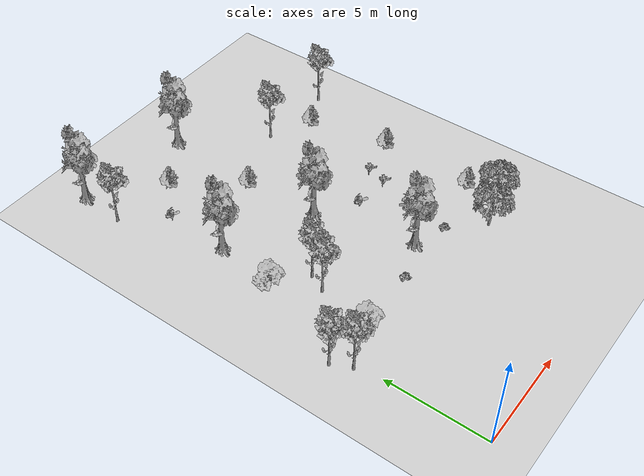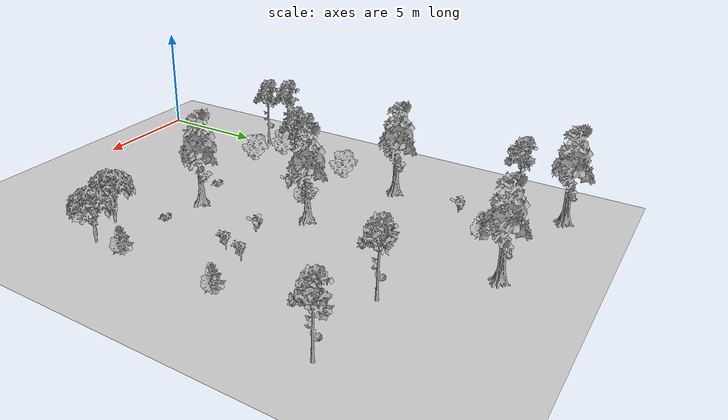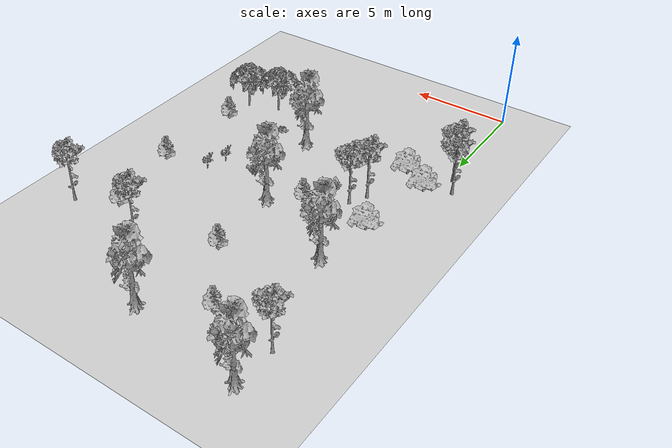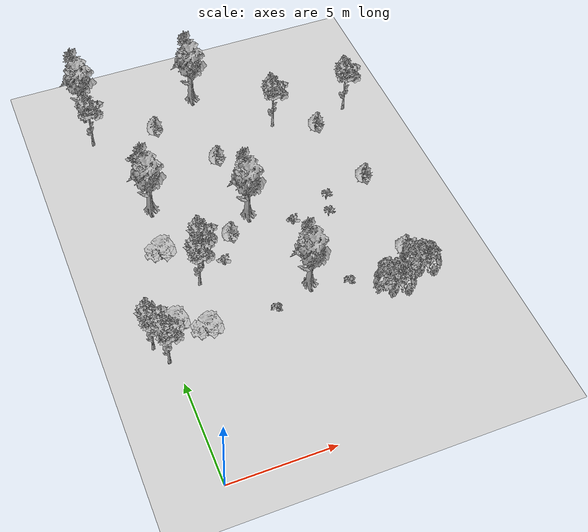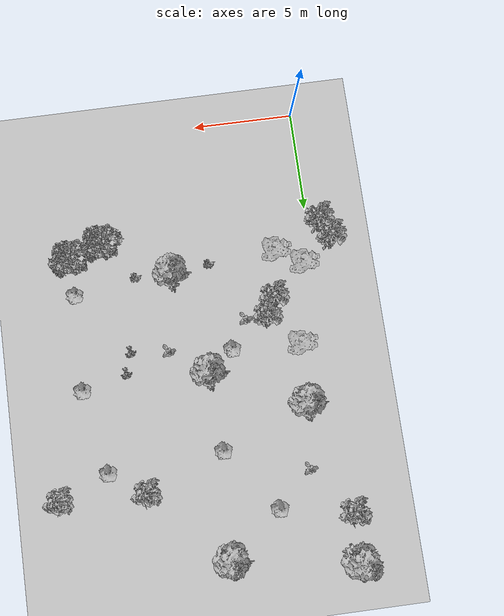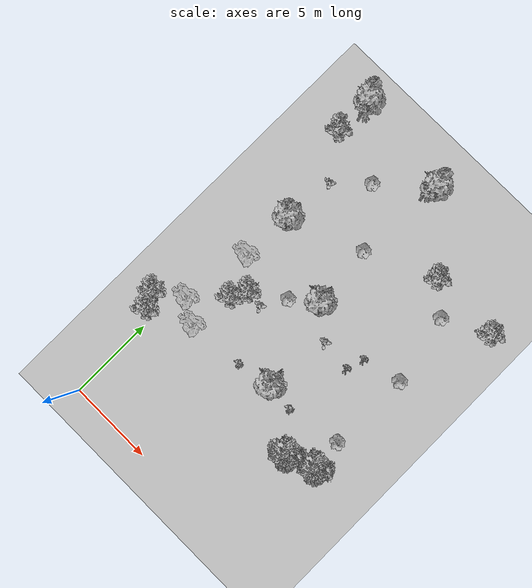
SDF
<sdf version="1.7">
 <world name="default">
  <model name="ground_plane">
   <static>1</static>
   <link name="link">
    <collision name="collision">
     <geometry><plane><normal>0 0 1</normal><size>100 100</size></plane></geometry>
     <surface>
      <contact><collide_bitmask>65535</collide_bitmask></contact>
      <friction><ode><mu>100</mu><mu2>50</mu2></ode></friction>
     </surface>
    </collision>
    <visual name="visual">
     <cast_shadows>0</cast_shadows>
     <geometry><plane><normal>0 0 1</normal><size>100 100</size></plane></geometry>
     <material>
      <script><uri>file://media/materials/scripts/gazebo.material</uri><name>Gazebo/Grey</name></script>
     </material>
    </visual>
   </link>
  </model>
  <model name="Tree 4_clone_5">
   <static>1</static>
   <pose>7.09997 7.95608 8e-06 1.57079 -0 0</pose>
   <link name="link">
    <collision name="collision">
     <geometry><mesh><scale>1 1 1</scale><uri>model://tree_4/meshes/tree_4.obj</uri></mesh></geometry>
    </collision>
    <visual name="visual">
     <geometry><mesh><scale>1 1 1</scale><uri>model://tree_4/meshes/tree_4.obj</uri></mesh></geometry>
    </visual>
   </link>
  </model>
  <model name="Tree 3_clone_0">
   <static>1</static>
   <pose>0.506339 7.77262 0 1.57079 -0 0</pose>
   <link name="link">
    <collision name="collision">
     <geometry><mesh><scale>1 1 1</scale><uri>model://tree_3/meshes/tree_3.obj</uri></mesh></geometry>
    </collision>
    <visual name="visual">
     <geometry><mesh><scale>1 1 1</scale><uri>model://tree_3/meshes/tree_3.obj</uri></mesh></geometry>
    </visual>
   </link>
  </model>
  <model name="Tree 3_clone_1">
   <static>1</static>
   <pose>1.81337 6.98511 0 1.57079 -0 0</pose>
   <link name="link">
    <collision name="collision">
     <geometry><mesh><scale>1 1 1</scale><uri>model://tree_3/meshes/tree_3.obj</uri></mesh></geometry>
    </collision>
    <visual name="visual">
     <geometry><mesh><scale>1 1 1</scale><uri>model://tree_3/meshes/tree_3.obj</uri></mesh></geometry>
    </visual>
   </link>
  </model>
  <model name="Bush 2_0">
   <static>1</static>
   <pose>8.93563 7.46367 0 1.57079 -0 0</pose>
   <link name="link">
    <collision name="collision">
     <geometry><mesh><scale>1 1 1</scale><uri>model://bush_2/meshes/bush_2.obj</uri></mesh></geometry>
    </collision>
    <visual name="visual">
     <geometry><mesh><scale>1 1 1</scale><uri>model://bush_2/meshes/bush_2.obj</uri></mesh></geometry>
    </visual>
   </link>
  </model>
  <model name="Bush 2_1">
   <static>1</static>
   <pose>5.20701 7.24724 0 1.57079 -0 0</pose>
   <link name="link">
    <collision name="collision">
     <geometry><mesh><scale>1 1 1</scale><uri>model://bush_2/meshes/bush_2.obj</uri></mesh></geometry>
    </collision>
    <visual name="visual">
     <geometry><mesh><scale>1 1 1</scale><uri>model://bush_2/meshes/bush_2.obj</uri></mesh></geometry>
    </visual>
   </link>
  </model>
  <model name="Tree 4_1_clone_0">
   <static>1</static>
   <pose>1.61386 14.7792 0 1.57079 -0 0</pose>
   <link name="link">
    <collision name="collision">
     <geometry><mesh><scale>1 1 1</scale><uri>model://tree_4/meshes/tree_4.obj</uri></mesh></geometry>
    </collision>
    <visual name="visual">
     <geometry><mesh><scale>1 1 1</scale><uri>model://tree_4/meshes/tree_4.obj</uri></mesh></geometry>
    </visual>
   </link>
  </model>
  <model name="Tree 4_1_clone_6">
   <static>1</static>
   <pose>5.92289 12.8099 0 1.57079 -0 0</pose>
   <link name="link">
    <collision name="collision">
     <geometry><mesh><scale>1 1 1</scale><uri>model://tree_4/meshes/tree_4.obj</uri></mesh></geometry>
    </collision>
    <visual name="visual">
     <geometry><mesh><scale>1 1 1</scale><uri>model://tree_4/meshes/tree_4.obj</uri></mesh></geometry>
    </visual>
   </link>
  </model>
  <model name="Tree 4_1_clone_7">
   <static>1</static>
   <pose>5.99735 21.326 0 1.57079 -0 0</pose>
   <link name="link">
    <collision name="collision">
     <geometry><mesh><scale>1 1 1</scale><uri>model://tree_4/meshes/tree_4.obj</uri></mesh></geometry>
    </collision>
    <visual name="visual">
     <geometry><mesh><scale>1 1 1</scale><uri>model://tree_4/meshes/tree_4.obj</uri></mesh></geometry>
    </visual>
   </link>
  </model>
  <model name="Tree 4_1_clone_8">
   <static>1</static>
   <pose>0.298571 22.1312 0 1.57079 -0 0</pose>
   <link name="link">
    <collision name="collision">
     <geometry><mesh><scale>1 1 1</scale><uri>model://tree_4/meshes/tree_4.obj</uri></mesh></geometry>
    </collision>
    <visual name="visual">
     <geometry><mesh><scale>1 1 1</scale><uri>model://tree_4/meshes/tree_4.obj</uri></mesh></geometry>
    </visual>
   </link>
  </model>
  <model name="Tree 3_clone_2">
   <static>1</static>
   <pose>1.20207 11.7727 0 1.57079 -0 0</pose>
   <link name="link">
    <collision name="collision">
     <geometry><mesh><scale>1 1 1</scale><uri>model://tree_3/meshes/tree_3.obj</uri></mesh></geometry>
    </collision>
    <visual name="visual">
     <geometry><mesh><scale>1 1 1</scale><uri>model://tree_3/meshes/tree_3.obj</uri></mesh></geometry>
    </visual>
   </link>
  </model>
  <model name="Tree 5_clone_2_clone_0">
   <static>1</static>
   <pose>4.63636 11.7118 0 1.57079 -0 0</pose>
   <link name="link">
    <collision name="collision">
     <geometry><mesh><scale>1 1 1</scale><uri>model://tree_5/meshes/tree.obj</uri></mesh></geometry>
    </collision>
    <visual name="visual">
     <geometry><mesh><scale>1 1 1</scale><uri>model://tree_5/meshes/tree.obj</uri></mesh></geometry>
    </visual>
   </link>
  </model>
  <model name="Tree 5_clone_2_clone_2">
   <static>1</static>
   <pose>5.71972 16.5378 0 1.57079 -0 0</pose>
   <link name="link">
    <collision name="collision">
     <geometry><mesh><scale>1 1 1</scale><uri>model://tree_5/meshes/tree.obj</uri></mesh></geometry>
    </collision>
    <visual name="visual">
     <geometry><mesh><scale>1 1 1</scale><uri>model://tree_5/meshes/tree.obj</uri></mesh></geometry>
    </visual>
   </link>
  </model>
  <model name="Tree 5_clone_2_clone_3">
   <static>1</static>
   <pose>3.42434 19.5783 0 1.57079 -0 0</pose>
   <link name="link">
    <collision name="collision">
     <geometry><mesh><scale>1 1 1</scale><uri>model://tree_5/meshes/tree.obj</uri></mesh></geometry>
    </collision>
    <visual name="visual">
     <geometry><mesh><scale>1 1 1</scale><uri>model://tree_5/meshes/tree.obj</uri></mesh></geometry>
    </visual>
   </link>
  </model>
  <model name="Tree 5_clone_2_clone_4">
   <static>1</static>
   <pose>12.1278 12.8074 0 1.57079 -0 0</pose>
   <link name="link">
    <collision name="collision">
     <geometry><mesh><scale>1 1 1</scale><uri>model://tree_5/meshes/tree.obj</uri></mesh></geometry>
    </collision>
    <visual name="visual">
     <geometry><mesh><scale>1 1 1</scale><uri>model://tree_5/meshes/tree.obj</uri></mesh></geometry>
    </visual>
   </link>
  </model>
  <model name="Tree 5_clone_2_clone_5">
   <static>1</static>
   <pose>11.3262 16.8811 0 1.57079 -0 0</pose>
   <link name="link">
    <collision name="collision">
     <geometry><mesh><scale>1 1 1</scale><uri>model://tree_5/meshes/tree.obj</uri></mesh></geometry>
    </collision>
    <visual name="visual">
     <geometry><mesh><scale>1 1 1</scale><uri>model://tree_5/meshes/tree.obj</uri></mesh></geometry>
    </visual>
   </link>
  </model>
  <model name="Tree 5_clone_2_clone_6">
   <static>1</static>
   <pose>12.0084 8.07083 0 1.57079 -0 0</pose>
   <link name="link">
    <collision name="collision">
     <geometry><mesh><scale>1 1 1</scale><uri>model://tree_5/meshes/tree.obj</uri></mesh></geometry>
    </collision>
    <visual name="visual">
     <geometry><mesh><scale>1 1 1</scale><uri>model://tree_5/meshes/tree.obj</uri></mesh></geometry>
    </visual>
   </link>
  </model>
  <model name="Bush 0_1_clone">
   <static>1</static>
   <pose>3.85346 10.3641 0 1.57079 -0 0</pose>
   <link name="link">
    <collision name="collision">
     <geometry><mesh><scale>1 1 1</scale><uri>model://bush_0/meshes/bush_0.obj</uri></mesh></geometry>
    </collision>
    <visual name="visual">
     <geometry><mesh><scale>1 1 1</scale><uri>model://bush_0/meshes/bush_0.obj</uri></mesh></geometry>
    </visual>
   </link>
  </model>
  <model name="Bush 0_1_clone_0">
   <static>1</static>
   <pose>7.79421 11.4631 0 1.57079 -0 0</pose>
   <link name="link">
    <collision name="collision">
     <geometry><mesh><scale>1 1 1</scale><uri>model://bush_0/meshes/bush_0.obj</uri></mesh></geometry>
    </collision>
    <visual name="visual">
     <geometry><mesh><scale>1 1 1</scale><uri>model://bush_0/meshes/bush_0.obj</uri></mesh></geometry>
    </visual>
   </link>
  </model>
  <model name="Bush 0_1_clone_1">
   <static>1</static>
   <pose>1.75843 17.948 0 1.57079 -0 0</pose>
   <link name="link">
    <collision name="collision">
     <geometry><mesh><scale>1 1 1</scale><uri>model://bush_0/meshes/bush_0.obj</uri></mesh></geometry>
    </collision>
    <visual name="visual">
     <geometry><mesh><scale>1 1 1</scale><uri>model://bush_0/meshes/bush_0.obj</uri></mesh></geometry>
    </visual>
   </link>
  </model>
  <model name="Tree 9_clone_3">
   <static>1</static>
   <pose>-0.250946 6.26561 0 1.57079 -0 0</pose>
   <link name="link">
    <collision name="collision">
     <geometry><mesh><scale>1 1 1</scale><uri>model://tree_9/meshes/tree_9.obj</uri></mesh></geometry>
    </collision>
    <visual name="visual">
     <geometry><mesh><scale>1 1 1</scale><uri>model://tree_9/meshes/tree_9.obj</uri></mesh></geometry>
    </visual>
   </link>
  </model>
  <model name="Tree 9_clone_4">
   <static>1</static>
   <pose>-0.693355 7.19419 0 1.57079 -0 0</pose>
   <link name="link">
    <collision name="collision">
     <geometry><mesh><scale>1 1 1</scale><uri>model://tree_9/meshes/tree_9.obj</uri></mesh></geometry>
    </collision>
    <visual name="visual">
     <geometry><mesh><scale>1 1 1</scale><uri>model://tree_9/meshes/tree_9.obj</uri></mesh></geometry>
    </visual>
   </link>
  </model>
  <model name="Tree 9_clone_5">
   <static>1</static>
   <pose>2.39117 9.75393 0 1.57079 -0 0</pose>
   <link name="link">
    <collision name="collision">
     <geometry><mesh><scale>1 1 1</scale><uri>model://tree_9/meshes/tree_9.obj</uri></mesh></geometry>
    </collision>
    <visual name="visual">
     <geometry><mesh><scale>1 1 1</scale><uri>model://tree_9/meshes/tree_9.obj</uri></mesh></geometry>
    </visual>
   </link>
  </model>
  <model name="Tree 9_clone_6">
   <static>1</static>
   <pose>2.82424 10.614 0 1.57079 -0 0</pose>
   <link name="link">
    <collision name="collision">
     <geometry><mesh><scale>1 1 1</scale><uri>model://tree_9/meshes/tree_9.obj</uri></mesh></geometry>
    </collision>
    <visual name="visual">
     <geometry><mesh><scale>1 1 1</scale><uri>model://tree_9/meshes/tree_9.obj</uri></mesh></geometry>
    </visual>
   </link>
  </model>
  <model name="Tree 9_clone_7">
   <static>1</static>
   <pose>0.207473 19.9974 0 1.57079 -0 0</pose>
   <link name="link">
    <collision name="collision">
     <geometry><mesh><scale>1 1 1</scale><uri>model://tree_9/meshes/tree_9.obj</uri></mesh></geometry>
    </collision>
    <visual name="visual">
     <geometry><mesh><scale>1 1 1</scale><uri>model://tree_9/meshes/tree_9.obj</uri></mesh></geometry>
    </visual>
   </link>
  </model>
  <model name="Tree 9_clone_11">
   <static>1</static>
   <pose>9.33452 17.9918 0 1.57079 -0 0</pose>
   <link name="link">
    <collision name="collision">
     <geometry><mesh><scale>1 1 1</scale><uri>model://tree_9/meshes/tree_9.obj</uri></mesh></geometry>
    </collision>
    <visual name="visual">
     <geometry><mesh><scale>1 1 1</scale><uri>model://tree_9/meshes/tree_9.obj</uri></mesh></geometry>
    </visual>
   </link>
  </model>
  <model name="Tree 9_clone_12">
   <static>1</static>
   <pose>13.2926 17.845 0 1.57079 -0 0</pose>
   <link name="link">
    <collision name="collision">
     <geometry><mesh><scale>1 1 1</scale><uri>model://tree_9/meshes/tree_9.obj</uri></mesh></geometry>
    </collision>
    <visual name="visual">
     <geometry><mesh><scale>1 1 1</scale><uri>model://tree_9/meshes/tree_9.obj</uri></mesh></geometry>
    </visual>
   </link>
  </model>
  <model name="Bush 5_0_clone_2">
   <static>1</static>
   <pose>9.59407 11.3363 0 1.57079 -0 0</pose>
   <link name="link">
    <collision name="collision">
     <geometry><mesh><scale>1 1 1</scale><uri>model://bush_5/meshes/bush_5.obj</uri></mesh></geometry>
    </collision>
    <visual name="visual">
     <geometry><mesh><scale>1 1 1</scale><uri>model://bush_5/meshes/bush_5.obj</uri></mesh></geometry>
    </visual>
   </link>
  </model>
  <model name="Bush 5_0_clone_3">
   <static>1</static>
   <pose>9.90848 12.3477 0 1.57079 -0 0</pose>
   <link name="link">
    <collision name="collision">
     <geometry><mesh><scale>1 1 1</scale><uri>model://bush_5/meshes/bush_5.obj</uri></mesh></geometry>
    </collision>
    <visual name="visual">
     <geometry><mesh><scale>1 1 1</scale><uri>model://bush_5/meshes/bush_5.obj</uri></mesh></geometry>
    </visual>
   </link>
  </model>
  <model name="Tree 2_1_clone">
   <static>1</static>
   <pose>10.3352 5.92263 0 1.57079 -0 0</pose>
   <link name="link">
    <collision name="collision">
     <geometry><mesh><scale>1 1 1</scale><uri>model://tree_2/meshes/tree_2.obj</uri></mesh></geometry>
    </collision>
    <visual name="visual">
     <geometry><mesh><scale>1 1 1</scale><uri>model://tree_2/meshes/tree_2.obj</uri></mesh></geometry>
    </visual>
   </link>
  </model>
  <model name="Tree 2_1_clone_0">
   <static>1</static>
   <pose>11.8818 6.48609 0 1.57079 -0 0</pose>
   <link name="link">
    <collision name="collision">
     <geometry><mesh><scale>1 1 1</scale><uri>model://tree_2/meshes/tree_2.obj</uri></mesh></geometry>
    </collision>
    <visual name="visual">
     <geometry><mesh><scale>1 1 1</scale><uri>model://tree_2/meshes/tree_2.obj</uri></mesh></geometry>
    </visual>
   </link>
  </model>
 </world>
</sdf>
